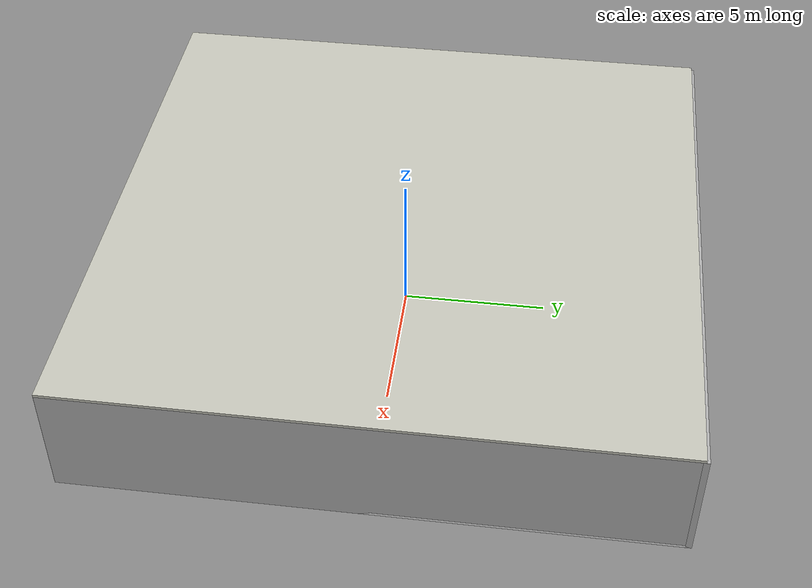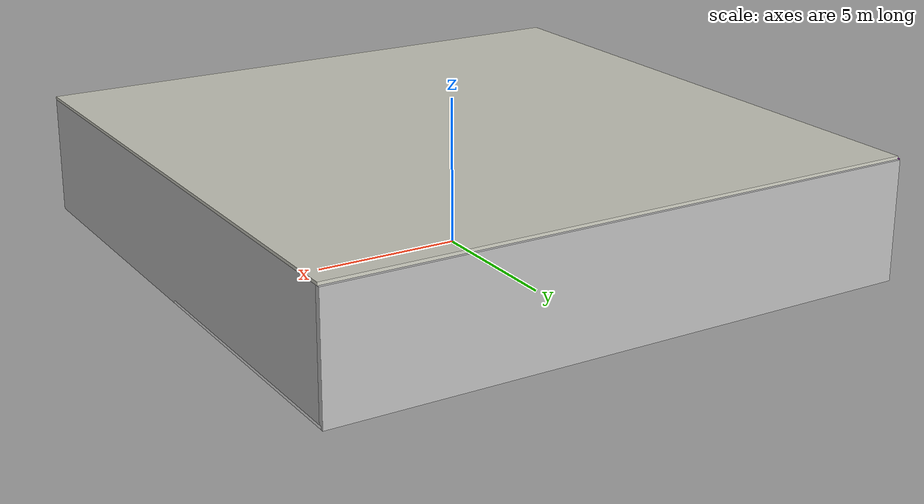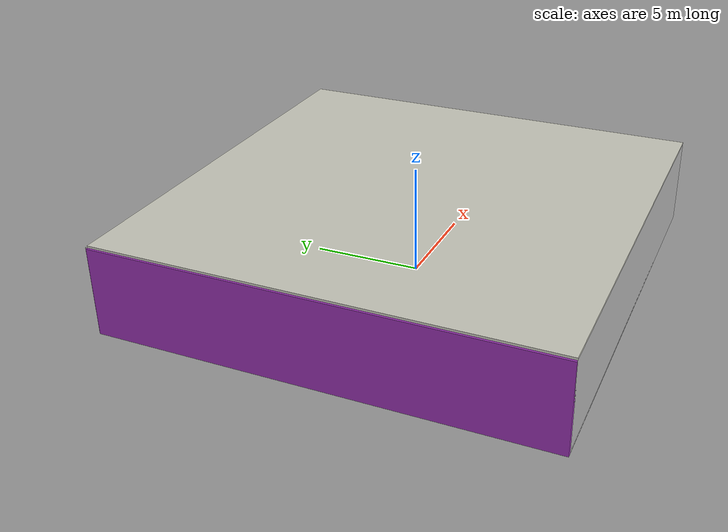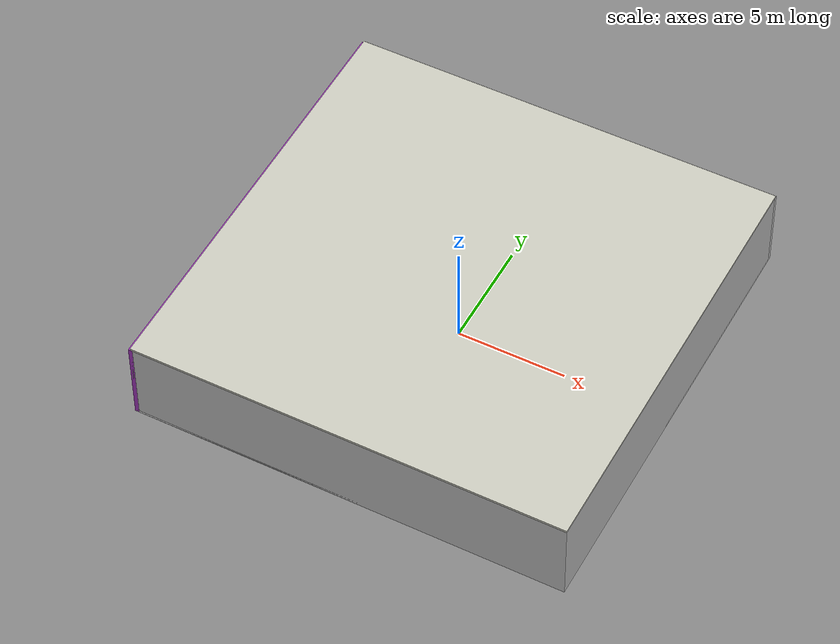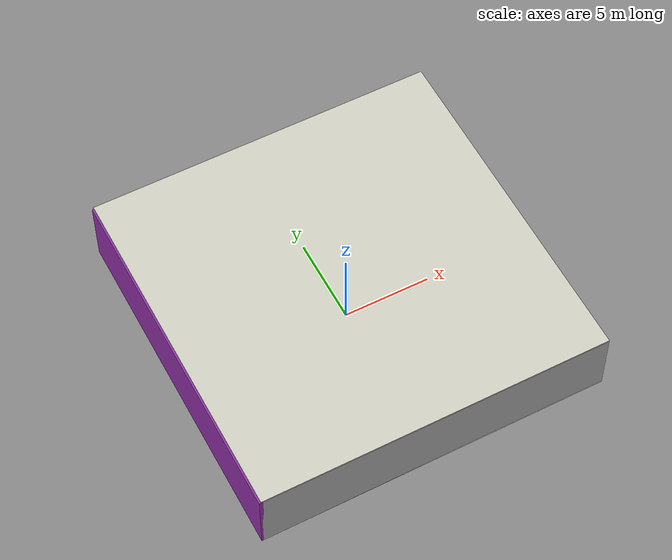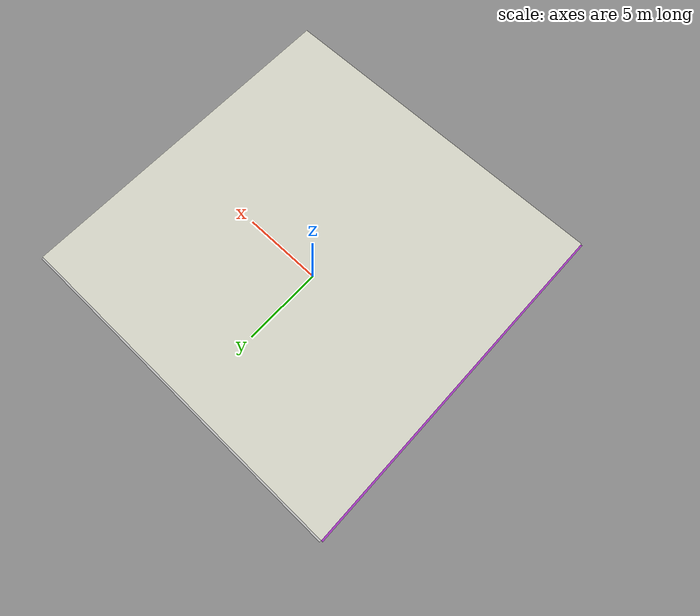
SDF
<sdf version="1.4">
 <world name="default">
  <physics type="ode">
   <max_step_size>0.001</max_step_size>
   <real_time_factor>1</real_time_factor>
   <real_time_update_rate>1000</real_time_update_rate>
   <gravity>0 0 -9.8</gravity>
  </physics>
  <scene><ambient>0.4 0.4 0.4 1</ambient><background>0.7 0.7 0.7 1</background><shadows>1</shadows></scene>
  <model name="Surrounding">
   <static>1</static>
   <link name="Ceiling">
    <collision name="Ceiling_Collision"><geometry><box><size>20 20 0.1</size></box></geometry></collision>
    <visual name="Ceiling_Visual">
     <geometry><box><size>20 20 0.1</size></box></geometry>
     <material>
      <script><uri>file://media/materials/scripts/gazebo.material</uri><name>Gazebo/PaintedWall</name></script>
     </material>
    </visual>
    <pose>0 0 4.05 0 0 0</pose>
   </link>
   <link name="Wall_South">
    <collision name="Wall_South_Collision">
     <geometry><box><size>20 0 4</size></box></geometry>
     <pose>0 0 2 0 -0 0</pose>
    </collision>
    <visual name="Wall_South_Visual">
     <pose>0 0 2 0 -0 0</pose>
     <geometry><box><size>20 0 4</size></box></geometry>
     <material>
      <script><uri>file://media/materials/scripts/gazebo.material</uri><name>Gazebo/LightOn</name></script>
     </material>
    </visual>
    <velocity_decay><linear>0</linear><angular>0</angular></velocity_decay>
    <pose>0 -10 0 0 -0 0</pose>
   </link>
   <link name="Wall_East">
    <collision name="Wall_21_Collision">
     <geometry><box><size>20 0 4</size></box></geometry>
     <pose>0 0 2 0 -0 0</pose>
    </collision>
    <visual name="Wall_21_Visual">
     <pose>0 0 2 0 -0 0</pose>
     <geometry><box><size>20 0 4</size></box></geometry>
     <material>
      <script><uri>file://media/materials/scripts/gazebo.material</uri><name>Gazebo/PioneerBody</name></script>
     </material>
    </visual>
    <velocity_decay><linear>0</linear><angular>0</angular></velocity_decay>
    <pose>10 0 0 0 -0 1.5708</pose>
   </link>
   <link name="Wall_North">
    <collision name="Wall_22_Collision">
     <geometry><box><size>20 0.2 4</size></box></geometry>
     <pose>0 0 2 0 -0 0</pose>
    </collision>
    <visual name="Wall_22_Visual">
     <pose>0 0 2 0 -0 0</pose>
     <geometry><box><size>20 0.2 4</size></box></geometry>
     <material>
      <script><uri>file://media/materials/scripts/gazebo.material</uri><name>Gazebo/LightOff</name></script>
     </material>
    </visual>
    <velocity_decay><linear>0</linear><angular>0</angular></velocity_decay>
    <pose>0 10 0 0 -0 0</pose>
   </link>
   <link name="Wall_West">
    <collision name="Wall_23_Collision">
     <geometry><box><size>20 0.2 4</size></box></geometry>
     <pose>0 0 2 0 -0 0</pose>
    </collision>
    <visual name="Wall_23_Visual">
     <pose>0 0 2 0 -0 0</pose>
     <geometry><box><size>20 0.2 4</size></box></geometry>
     <material>
      <script><uri>file://media/materials/scripts/gazebo.material</uri><name>Gazebo/PurpleGlow</name></script>
     </material>
    </visual>
    <velocity_decay><linear>0</linear><angular>0</angular></velocity_decay>
    <pose>-10 0 0 0 0 -1.5708</pose>
   </link>
   <link name="Ground_link">
    <collision name="collision">
     <pose>0 0 .05 0 -0 0</pose>
     <geometry><box><size>20 20 0.1</size></box></geometry>
    </collision>
    <visual name="visual">
     <pose>0 0 .05 0 -0 0</pose>
     <geometry><box><size>20 20 0.1</size></box></geometry>
     <material>
      <script><uri>file://media/materials/scripts/gazebo.material</uri><name>Gazebo/White</name></script>
     </material>
    </visual>
   </link>
   <static>1</static>
  </model>
  <spherical_coordinates>
   <surface_model>EARTH_WGS84</surface_model>
   <latitude_deg>0</latitude_deg>
   <longitude_deg>0</longitude_deg>
   <elevation>0</elevation>
   <heading_deg>0</heading_deg>
  </spherical_coordinates>
  <light name="lightball_0" type="diffuse">
   <diffuse>0.8 0.8 0.8 1</diffuse>
   <specular>0.2 0.2 0.2 1</specular>
   <attenuation>
    <range>100</range>
    <constant>0.7</constant>
    <linear>0.01</linear>
    <quadratic>0.001</quadratic>
   </attenuation>
   <direction>-0.5 0.1 -0.9</direction>
   <pose>-4.22722914297 8.34169335986 2.1080760236 0 0 0</pose>
  </light>
  <light name="lightball_1" type="diffuse">
   <diffuse>0.8 0.8 0.8 1</diffuse>
   <specular>0.2 0.2 0.2 1</specular>
   <attenuation>
    <range>100</range>
    <constant>0.7</constant>
    <linear>0.01</linear>
    <quadratic>0.001</quadratic>
   </attenuation>
   <direction>-0.5 0.1 -0.9</direction>
   <pose>3.3100625703 -7.60501229132 1.29057309214 0 0 0</pose>
  </light>
  <light name="lightball_2" type="diffuse">
   <diffuse>0.8 0.8 0.8 1</diffuse>
   <specular>0.2 0.2 0.2 1</specular>
   <attenuation>
    <range>100</range>
    <constant>0.7</constant>
    <linear>0.01</linear>
    <quadratic>0.001</quadratic>
   </attenuation>
   <direction>-0.5 0.1 -0.9</direction>
   <pose>2.40093948168 0.432230818355 1.98489958542 0 0 0</pose>
  </light>
  <light name="lightball_3" type="diffuse">
   <diffuse>0.8 0.8 0.8 1</diffuse>
   <specular>0.2 0.2 0.2 1</specular>
   <attenuation>
    <range>100</range>
    <constant>0.7</constant>
    <linear>0.01</linear>
    <quadratic>0.001</quadratic>
   </attenuation>
   <direction>-0.5 0.1 -0.9</direction>
   <pose>-7.62892260511 -2.89485670993 3.88863168334 0 0 0</pose>
  </light>
  <light name="lightball_4" type="diffuse">
   <diffuse>0.8 0.8 0.8 1</diffuse>
   <specular>0.2 0.2 0.2 1</specular>
   <attenuation>
    <range>100</range>
    <constant>0.7</constant>
    <linear>0.01</linear>
    <quadratic>0.001</quadratic>
   </attenuation>
   <direction>-0.5 0.1 -0.9</direction>
   <pose>-4.05847391826 -8.75299582909 2.38594111777 0 0 0</pose>
  </light>
  <light name="lightball_5" type="diffuse">
   <diffuse>0.8 0.8 0.8 1</diffuse>
   <specular>0.2 0.2 0.2 1</specular>
   <attenuation>
    <range>100</range>
    <constant>0.7</constant>
    <linear>0.01</linear>
    <quadratic>0.001</quadratic>
   </attenuation>
   <direction>-0.5 0.1 -0.9</direction>
   <pose>-9.65980718056 8.89189816248 2.32171132231 0 0 0</pose>
  </light>
  <include>
   <uri>model://construction_cone</uri>
   <pose>-7.97631753478 -8.24529716796 0 0 0 2.8741334198</pose>
  </include>
  <include><uri>model://table</uri><pose>-4.38901303835 4.65207865284 0 0 0 0.339540380586</pose></include>
  <include><uri>model://cabinet</uri><pose>-0.840307446431 -7.99226977398 0 0 0 0.437615811139</pose></include>
  <include>
   <uri>model://construction_cone</uri>
   <pose>1.67850554882 -5.14848389954 0 0 0 0.370452930002</pose>
  </include>
  <include><uri>model://table</uri><pose>2.00383931369 -2.00746682386 0 0 0 0.930009370679</pose></include>
  <include><uri>model://cabinet</uri><pose>1.3782308643 7.34623424915 0 0 0 1.706526057</pose></include>
  <include>
   <uri>model://textured_shapes</uri>
   <pose>5.08875505808 -7.37862652071 0 0 0 1.30995166582</pose>
  </include>
  <include><uri>model://cabinet</uri><pose>4.65000934146 -4.06995815979 0 0 0 2.84025068492</pose></include>
  <include><uri>model://cabinet</uri><pose>3.80435107283 7.54140635869 0 0 0 1.59378858869</pose></include>
  <include>
   <uri>model://textured_shapes</uri>
   <pose>7.32498606131 -6.9478195257 0 0 0 1.79889074503</pose>
  </include>
 </world>
</sdf>

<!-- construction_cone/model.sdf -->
<sdf version="1.5">
  <model name="Construction Cone">
    <link name="link">
      <collision name="collision">
        <geometry>
          <mesh>
            <scale>10 10 10</scale>
            <uri>file://isr-testbed/construction_cone/meshes/construction_cone.dae</uri>
          </mesh>
        </geometry>
      </collision>
      <visual name="visual">
        <geometry>
          <mesh>
            <scale>10 10 10</scale>
            <uri>file://isr-testbed/construction_cone/meshes/construction_cone.dae</uri>
          </mesh>
        </geometry>
      </visual>
    </link>
  </model>
</sdf>

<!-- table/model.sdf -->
<sdf version="1.5">
  <model name="table">
    <static>true</static>
    <link name="link">
      <collision name="surface">
        <pose>0 0 1.0 0 0 0</pose>
        <geometry>
          <box>
            <size>1.5 0.8 0.03</size>
          </box>
        </geometry>
        <surface>
          <friction>
            <ode>
              <mu>0.6</mu>
              <mu2>0.6</mu2>
            </ode>
          </friction>
        </surface>
      </collision>
      <visual name="visual1">
        <pose>0 0 1.0 0 0 0</pose>
        <geometry>
          <box>
            <size>1.5 0.8 0.03</size>
          </box>
        </geometry>
        <material>
          <script>
            <uri>model://media/materials/scripts/gazebo.material</uri>
            <name>Gazebo/Wood</name>
          </script>
        </material>
      </visual>
      <collision name="front_left_leg">
        <pose>0.68 0.38 0.5 0 0 0</pose>
        <geometry>
          <cylinder>
            <radius>0.02</radius>
            <length>1.0</length>
          </cylinder>
        </geometry>
      </collision>
      <visual name="front_left_leg">
        <pose>0.68 0.38 0.5 0 0 0</pose>
        <geometry>
          <cylinder>
            <radius>0.02</radius>
            <length>1.0</length>
          </cylinder>
        </geometry>
        <material>
          <script>
            <uri>model://media/materials/scripts/gazebo.material</uri>
            <name>Gazebo/Grey</name>
          </script>
        </material>
      </visual>
      <collision name="front_right_leg">
        <pose>0.68 -0.38 0.5 0 0 0</pose>
        <geometry>
          <cylinder>
            <radius>0.02</radius>
            <length>1.0</length>
          </cylinder>
        </geometry>
      </collision>
      <visual name="front_right_leg">
        <pose>0.68 -0.38 0.5 0 0 0</pose>
        <geometry>
          <cylinder>
            <radius>0.02</radius>
            <length>1.0</length>
          </cylinder>
        </geometry>
        <material>
          <script>
            <uri>model://media/materials/scripts/gazebo.material</uri>
            <name>Gazebo/Grey</name>
          </script>
        </material>
      </visual>
      <collision name="back_right_leg">
        <pose>-0.68 -0.38 0.5 0 0 0</pose>
        <geometry>
          <cylinder>
            <radius>0.02</radius>
            <length>1.0</length>
          </cylinder>
        </geometry>
      </collision>
      <visual name="back_right_leg">
        <pose>-0.68 -0.38 0.5 0 0 0</pose>
        <geometry>
          <cylinder>
            <radius>0.02</radius>
            <length>1.0</length>
          </cylinder>
        </geometry>
        <material>
          <script>
            <uri>model://media/materials/scripts/gazebo.material</uri>
            <name>Gazebo/Grey</name>
          </script>
        </material>
      </visual>
      <collision name="back_left_leg">
        <pose>-0.68 0.38 0.5 0 0 0</pose>
        <geometry>
          <cylinder>
            <radius>0.02</radius>
            <length>1.0</length>
          </cylinder>
        </geometry>
      </collision>
      <visual name="back_left_leg">
        <pose>-0.68 0.38 0.5 0 0 0</pose>
        <geometry>
          <cylinder>
            <radius>0.02</radius>
            <length>1.0</length>
          </cylinder>
        </geometry>
        <material>
          <script>
            <uri>model://media/materials/scripts/gazebo.material</uri>
            <name>Gazebo/Grey</name>
          </script>
        </material>
      </visual>
    </link>
  </model>
</sdf>

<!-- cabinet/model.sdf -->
<sdf version="1.5">
  <model name="cabinet">
    <static>true</static>
    <link name="cabinet_bottom_plate">
      <inertial>
        <pose>0 0 -1 0 0 0</pose>
        <inertia>
          <ixx>2.050000</ixx>
          <ixy>0</ixy>
          <ixz>0</ixz>
          <iyy>2.050000</iyy>
          <iyz>0</iyz>
          <izz>2.050000</izz>
        </inertia>
        <mass>25.000000</mass>
      </inertial>
      <collision name="cabinet_bottom_plate_geom">
        <pose>0 0 0.010000 0 0 0</pose>
        <geometry>
          <box>
            <size>0.450000 0.450000 0.020000</size>
          </box>
        </geometry>
      </collision>
      <visual name="cabinet_bottom_plate_geom_visual">
        <pose>0 0 0.010000 0 0 0</pose>
        <geometry>
          <box>
            <size>0.450000 0.450000 0.020000</size>
          </box>
        </geometry>
        <material>
          <script>
            <uri>model://media/materials/scripts/gazebo.material</uri>
            <name>Gazebo/Wood</name>
          </script>
        </material>
      </visual>
      <collision name="cabinet_bottom_plate_geom_cabinet_back_plate">
        <pose>0.235000 0 0.510000 0 0 0</pose>
        <geometry>
          <box>
            <size>0.020000 0.450000 1.020000</size>
          </box>
        </geometry>
      </collision>
      <visual name="cabinet_bottom_plate_geom_cabinet_back_plate_visual">
        <pose>0.235000 0 0.510000 0 0 0</pose>
        <geometry>
          <box>
            <size>0.020000 0.450000 1.020000</size>
          </box>
        </geometry>
        <material>
          <script>
            <uri>model://media/materials/scripts/gazebo.material</uri>
            <name>Gazebo/Wood</name>
          </script>
        </material>
      </visual>
      <collision name="cabinet_bottom_plate_geom_cabinet_left_plate">
        <pose>0 0.235000 0.510000 0 0 0</pose>
        <geometry>
          <box>
            <size>0.450000 0.020000 1.020000</size>
          </box>
        </geometry>
      </collision>
      <visual name="cabinet_bottom_plate_geom_cabinet_left_plate_visual">
        <pose>0 0.235000 0.510000 0 0 0</pose>
        <geometry>
          <box>
            <size>0.450000 0.020000 1.020000</size>
          </box>
        </geometry>
        <material>
          <script>
            <uri>model://media/materials/scripts/gazebo.material</uri>
            <name>Gazebo/Wood</name>
          </script>
        </material>
      </visual>
      <collision name="cabinet_bottom_plate_geom_cabinet_middle_plate">
        <pose>0 0 0.510000 0 0 0</pose>
        <geometry>
          <box>
            <size>0.450000 0.450000 0.020000</size>
          </box>
        </geometry>
      </collision>
      <visual name="cabinet_bottom_plate_geom_cabinet_middle_plate_visual">
        <pose>0 0 0.510000 0 0 0</pose>
        <geometry>
          <box>
            <size>0.450000 0.450000 0.020000</size>
          </box>
        </geometry>
        <material>
          <script>
            <uri>model://media/materials/scripts/gazebo.material</uri>
            <name>Gazebo/Wood</name>
          </script>
        </material>
      </visual>
      <collision name="cabinet_bottom_plate_geom_cabinet_right_plate">
        <pose>0 -0.235000 0.510000 0 0 0</pose>
        <geometry>
          <box>
            <size>0.450000 0.020000 1.020000</size>
          </box>
        </geometry>
      </collision>
      <visual name="cabinet_bottom_plate_geom_cabinet_right_plate_visual">
        <pose>0 -0.235000 0.510000 0 0 0</pose>
        <geometry>
          <box>
            <size>0.450000 0.020000 1.020000</size>
          </box>
        </geometry>
        <material>
          <script>
            <uri>model://media/materials/scripts/gazebo.material</uri>
            <name>Gazebo/Wood</name>
          </script>
        </material>
      </visual>
      <collision name="cabinet_bottom_plate_geom_cabinet_top_plate">
        <pose>0 0 1.010000 0 0 0</pose>
        <geometry>
          <box>
            <size>0.450000 0.450000 0.020000</size>
          </box>
        </geometry>
      </collision>
      <visual name="cabinet_bottom_plate_geom_cabinet_top_plate_visual">
        <pose>0 0 1.010000 0 0 0</pose>
        <geometry>
          <box>
            <size>0.450000 0.450000 0.020000</size>
          </box>
        </geometry>
        <material>
          <script>
            <uri>model://media/materials/scripts/gazebo.material</uri>
            <name>Gazebo/Wood</name>
          </script>
        </material>
      </visual>
    </link>
  </model>
</sdf>

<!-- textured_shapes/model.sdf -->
<sdf version="1.6">
  <model name="textured_shapes">
    <pose>0 0 0.5 0 0 0</pose>
    <link name="box">
      <pose>0 -1.5 0 0 0 0</pose>
      <collision name="collision">
        <geometry>
          <box>
            <size>1 1 1</size>
          </box>
        </geometry>
      </collision>
      <visual name="visual">
        <geometry>
          <box>
            <size>1 1 1</size>
          </box>
        </geometry>
        <material>
          <script>
            <uri>model://../model_source/models/textured_shapes/materials/scripts</uri>
            <uri>model://../model_source/models/textured_shapes/materials/textures</uri>
            <name>TexturedShape/Squares</name>
          </script>
        </material>
      </visual>
    </link>
    <link name="sphere">
      <collision name="collision">
        <geometry>
          <sphere>
            <radius>0.5</radius>
          </sphere>
        </geometry>
      </collision>
      <visual name="visual">
        <geometry>
          <sphere>
            <radius>0.5</radius>
          </sphere>
        </geometry>
        <material>
          <script>
            <uri>model://../model_source/models/textured_shapes/materials/scripts</uri>
            <uri>model://../model_source/models/textured_shapes/materials/textures</uri>
            <name>TexturedShape/Squares</name>
          </script>
        </material>
      </visual>
    </link>
    <link name="cylinder">
      <pose>0 1.5 0 0 0 0</pose>
      <collision name="collision">
        <geometry>
          <cylinder>
            <radius>0.5</radius>
            <length>1</length>
          </cylinder>
        </geometry>
      </collision>
      <visual name="visual">
        <geometry>
          <cylinder>
            <radius>0.5</radius>
            <length>1</length>
          </cylinder>
        </geometry>
        <material>
          <script>
            <uri>model://../model_source/models/textured_shapes/materials/scripts</uri>
            <uri>model://../model_source/models/textured_shapes/materials/textures</uri>
            <name>TexturedShape/Squares</name>
          </script>
        </material>
      </visual>
    </link>
  </model>
</sdf>
